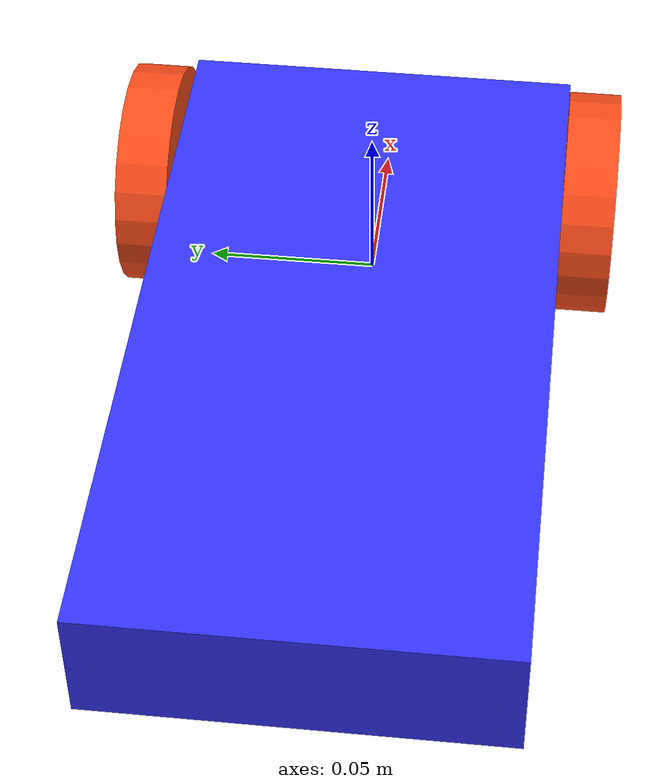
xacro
<?xml version="1.0"?>

<robot xmlns:xacro="http://www.ros.org/wiki/xacro" >
        <!-- colors -->
        <material name="white">
                <color rgba="1 1 1 1"/>
        </material>

        <material name="black">
                <color rgba="0 0 0 1"/>
        </material>

        <material name="orange">
                <color rgba="1 0.3 0.1 1"/>
        </material>

        <material name="blue">
                <color rgba="0.2 0.2 1 1"/>
        </material>

        <xacro:property name="chassis_length" value = "0.216" />
        <xacro:property name="chassis_width" value = "0.114" />
        <xacro:property name="chassis_height" value = "0.036" />
        <xacro:property name="wheel_diam" value = "0.065" />
        <xacro:property name="wheel_thickness" value = "0.015" />
        <xacro:property name="wheel_offset_x" value = "${(chassis_length/2) - (wheel_diam/2)}" />
        <xacro:property name="wheel_offset_y" value = "${(chassis_width/2) + (wheel_diam/2) }" />
        <xacro:property name="wheel_offset_z" value = "${wheel_diam/2}" />
        <xacro:property name="ball_caster_diam" value = "0.0254" />
        <xacro:property name="ball_caster_offset_x" value = "-${(chassis_length/2) - ball_caster_diam}" />
        <xacro:property name="ball_caster_offset_z" value = "-${((wheel_diam/2) - (ball_caster_diam/2))}" />
        <xacro:property name="chassis_mass" value = "2" />
        <xacro:property name="wheel_mass" value = "0.5" />
        <xacro:property name="ball_caster_mass" value = "0.5" />

        <xacro:include filename="inertia_macros.xacro" />
        <xacro:include filename="minibot_gazebo.xacro" />

        <!-- base_link -->
        <link name="base_link">
        <visual>
            <origin xyz="0 0 0" rpy="0 0 0"/>
            <geometry>
                <box size="0 0 0"/>
            </geometry>
        </visual>
        </link>

        <!-- chassis_joint -->
        <joint name="chassis_joint" type="fixed">
            <parent link="base_link"/>
            <child link="chassis_link"/>
            <origin xyz="${-wheel_offset_x} 0 ${wheel_diam/2}" rpy="0 0 0"/>
        </joint>

        <!-- chassis_link -->
        <link name="chassis_link">
        <visual>
            <geometry>
                <box size="${chassis_length} ${chassis_width} ${chassis_height}"/>
            </geometry>
                        <origin xyz="0 0 0" rpy="0 0 0"/>
            <material name="blue" />
        </visual>
                <collision>
                        <geometry>
                                <box size="${chassis_length} ${chassis_width} ${chassis_height}"/>
                        </geometry>
                        <origin xyz="0 0 0" rpy="0 0 0"/>
                </collision>
                <xacro:box_inertia m="${chassis_mass}" l="${chassis_length}" w="${chassis_width}" h="${chassis_height}"
                                xyz="0 0 0" rpy="0 0 0" />
        </link>

        <!-- right_wheel_joint -->
        <joint name="right_wheel_joint" type="continuous">
                <parent link="chassis_link"/>
                <child link="right_wheel_link"/>
                <origin xyz="${wheel_offset_x} ${-((chassis_width/2) + (wheel_thickness/2))} 0" rpy="${pi/2} 0 0"/>
                <axis xyz="0 0 -1"/>
        </joint>

        <!-- right_wheel_link -->
        <link name="right_wheel_link">
                <visual>
                        <geometry>
                                <cylinder length="${wheel_thickness}" radius="${wheel_diam/2}" />
                        </geometry>
            <origin xyz="0 0 0"  rpy="0 0 0"/>
                        <material name="orange" />
                </visual>
                <collision>
                        <geometry>
                                <cylinder length="${wheel_thickness}" radius="${wheel_diam/2}" />
                        </geometry>
            <origin xyz="0 0 0"  rpy="0 0 0"/>
                </collision>
                <xacro:cylinder_inertia m="${wheel_mass}" h="${wheel_thickness}" r="${wheel_diam/2}"
                                        xyz="0 0 0" rpy="0 0 0" />
        </link>

        <!-- left_wheel_joint -->
        <joint name="left_wheel_joint" type="continuous">
                <parent link="chassis_link"/>
                <child link="left_wheel_link"/>
                <origin xyz="${wheel_offset_x} ${(chassis_width/2) + (wheel_thickness/2)} 0" rpy="${-pi/2} 0 0"/>
                <axis xyz="0 0 1"/>
        </joint>

        <!-- left_wheel_link -->
        <link name="left_wheel_link">
                <visual>
                        <geometry>
                                <cylinder length="${wheel_thickness}" radius="${wheel_diam/2}" />
                        </geometry>
            <origin xyz="0 0 0"  rpy="0 0 0"/>
                        <material name="orange"/>
                </visual>
                <collision>
                        <geometry>
                                <cylinder length="${wheel_thickness}" radius="${wheel_diam/2}" />
                        </geometry>
            <origin xyz="0 0 0"  rpy="0 0 0"/>
                </collision>
                <xacro:cylinder_inertia m="${wheel_mass}" h="${wheel_thickness}" r="${wheel_diam/2}"
                                        xyz="0 0 0" rpy="0 0 0" />
        </link>

        <!-- caster_wheel_joint -->
        <joint name="caster_wheel_joint" type="fixed">
                <parent link="chassis_link"/>
                <child link="caster_wheel_link"/>
                <origin xyz="${ball_caster_offset_x} 0 ${ball_caster_offset_z}" rpy="0 0 0"/>
        </joint>

        <!-- caster_wheel_link -->
        <link name="caster_wheel_link">
                <visual>
                        <geometry>
                                <sphere radius="${ball_caster_diam/2}" />
                        </geometry>
                        <origin xyz="0 0 0"  rpy="0 0 0"/>
                        <material name="orange"/>
                </visual>
                <collision>
                        <geometry>
                                <sphere radius="${ball_caster_diam/2}" />
                        </geometry>
                        <origin xyz="0 0 0"  rpy="0 0 0"/>
                </collision>
                <xacro:sphere_inertia m="${ball_caster_mass}" r="${ball_caster_diam/2}" xyz="0 0 0" rpy="0 0 0" />
        </link>

</robot>

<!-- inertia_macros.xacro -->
<robot xmlns:xacro="http://www.ros.org/wiki/xacro" >

<xacro:macro name="box_inertia" params="m l w h xyz rpy">
    <inertial>
        <origin xyz="${xyz}" rpy="${rpy}" />
        <mass value="${m}" />
        <inertia ixx="${(m/12)*(w*w + h*h)}" ixy="0" ixz="0"
                iyy="${(m/12)*(l*l + h*h)}" iyz="0"
                izz="${(m/12)*(l*l + w*w)}" />
    </inertial>
</xacro:macro>

<xacro:macro name="cylinder_inertia" params="m h r xyz rpy">
    <inertial>
        <origin xyz="${xyz}" rpy="${rpy}" />
        <mass value="${m}" />
        <inertia ixx="${(m/12)*(3*r*r + h*h)}" ixy="0" ixz="0"
                 iyy="${(m/12)*(3*r*r + h*h)}" iyz="0"
                 izz="${(m/12)*(r*r)}" />
    </inertial>
</xacro:macro>

<xacro:macro name="sphere_inertia" params="m r xyz rpy">
    <inertial>
        <origin xyz="${xyz}" rpy="${rpy}" />
        <mass value="${m}" />
        <inertia ixx="${(2/5)*m*r*r}" ixy="0" ixz="0"
                iyy="${(2/5)*m*r*r}" iyz="0"
                izz="${(2/5)*m*r*r}" />
    </inertial>
</xacro:macro>

</robot>
